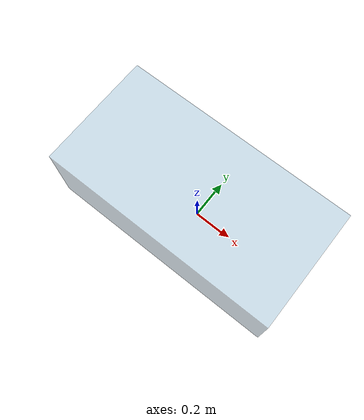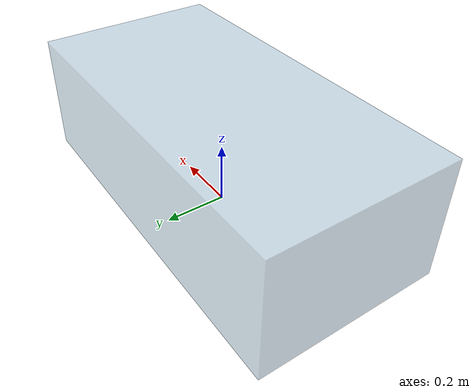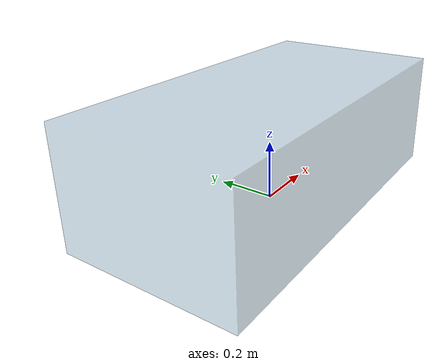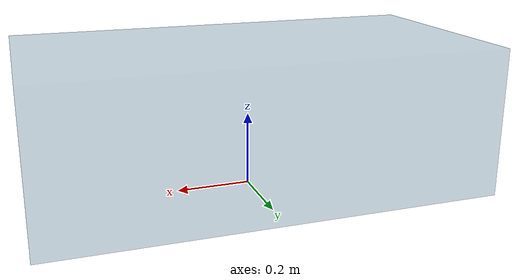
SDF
<?xml version="1.0"?>
<sdf version="1.7">
  <model name="grinding_trough_bbox">
    <static>true</static>
    <link name="grinding_trough_bbox_link">
      <pose>0 0 0.2 0 0 0</pose>
      <collision name="grinding_trough_bbox_collision">
        <geometry>
          <box>
            <size>1.2 0.6 0.4</size>
          </box>
        </geometry>
      </collision>
      <visual name="grinding_trough_bbox_visual">
        <geometry>
          <box>
            <size>1.2 0.6 0.4</size>
          </box>
        </geometry>
        <material>
          <ambient>0.55 0.70 0.80 0.45</ambient>
          <diffuse>0.55 0.70 0.80 0.45</diffuse>
          <specular>0.10 0.10 0.10 1.0</specular>
        </material>
        <transparency>0.35</transparency>
      </visual>
    </link>
  </model>
</sdf>
